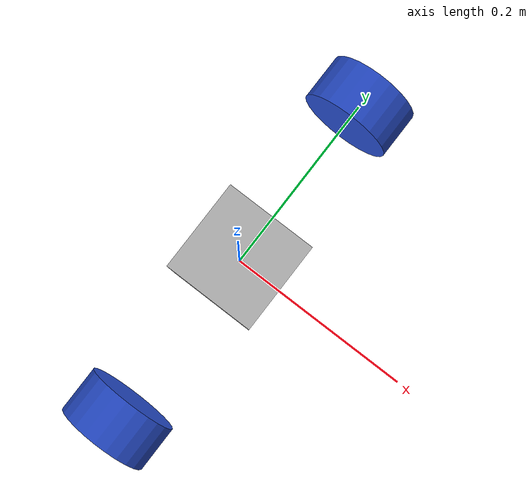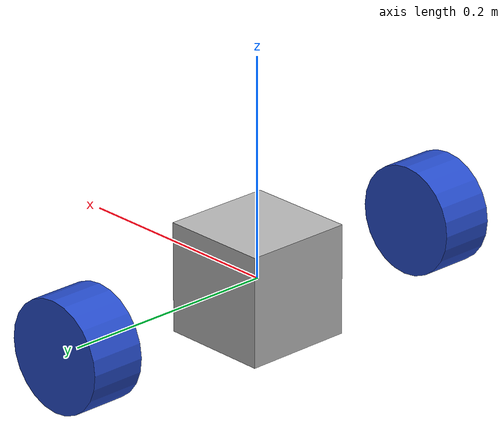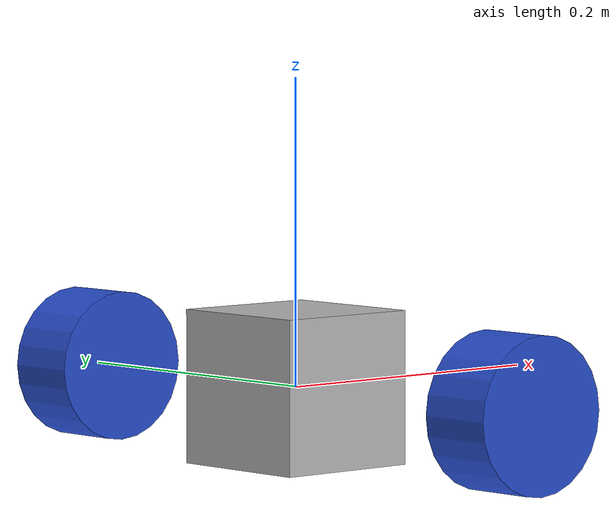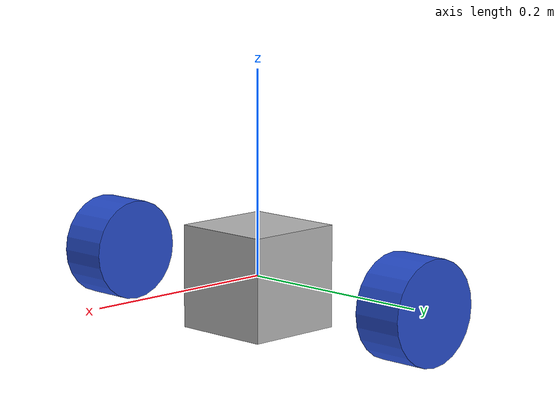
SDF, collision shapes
<sdf version='1.7'>
  <model name='bot'>
    	<link name='base_footprint' />

    	<joint name='base_link_joint' type='fixed'>
      		<parent>base_footprint</parent>
      		<child>base_link</child>
      	</joint>

    <joint name='lidar_joint' type='fixed'>
      		<pose>0.2 0 0.35 0 -0 0</pose>
      		<parent>base_link</parent>
      		<child>laserscan</child>
    	</joint>

    <link name='lasescan'>
    	<inertial>
    		<inertia>
          		<ixx>0.001</ixx>
          		<ixy>0.000</ixy>
          		<ixz>0.000</ixz>
          		<iyy>0.001</iyy>
          		<iyz>0.000</iyz>
          		<izz>0.001</izz>
        	</inertia>
        	<mass>0.114</mass>
      	</inertial>
      	<visual name='lidar_sensor_visual'>
        	<geometry>
          		<mesh>
            			<scale>1 1 1</scale>
            			<uri>model://waiter/meshes/hokuyo.dae</uri>
          		</mesh>
        	</geometry>
      	</visual>
        <collision name='base_scan_collision'>
        	<geometry>
          	<box>
            <size>0.1 0.1 0.1</size>
          </box>
        </geometry>
      </collision>
    </link>

    <joint name='left_wheel_hinge' type='revolute'>
      <pose relative_to='base_link'>0 0.2 0 0 -0 0</pose>
      <parent>base_link</parent>
      <child>left_wheel</child>
      <axis>
        <xyz>0 1 0</xyz>
        <limit>
          <lower>-1e+16</lower>
          <upper>1e+16</upper>
        </limit>
        <dynamics>
          <spring_reference>0</spring_reference>
          <spring_stiffness>0</spring_stiffness>
        </dynamics>
      </axis>
    </joint>

    <link name='left_wheel'>
      <pose relative_to='left_wheel_hinge'>0 0 0 0 -0 0</pose>
      <inertial>
        <pose>0 0 0 0 1.5707 1.5707</pose>
        <mass>1</mass>
        <inertia>
          <ixx>0.005</ixx>
          <ixy>0</ixy>
          <ixz>0</ixz>
          <iyy>0.0025</iyy>
          <iyz>0</iyz>
          <izz>0.0025</izz>
        </inertia>
      </inertial>
      <collision name='left_wheel_fixed_joint_lump__collision_collision'>
        <pose>0 0 0 -1.5707 1.5708 0</pose>
        <geometry>
          <cylinder>
            <length>0.05</length>
            <radius>0.05</radius>
          </cylinder>
        </geometry>
      </collision>
      <visual name='left_wheel_visual_visual'>
        <pose>0 0 0 -1.5707 1.5708 0</pose>
        <geometry>
          <cylinder>
            <length>0.05</length>
            <radius>0.05</radius>
          </cylinder>
        </geometry>
        <material>
          <script>
            <name>Gazebo/Blue</name>
            <uri>file://media/materials/scripts/gazebo.material</uri>
          </script>
        </material>
      </visual>
    </link>

    <joint name='right_wheel_hinge' type='revolute'>
      <pose relative_to='base_link'>0 -0.2 0 0 -0 0</pose>
      <parent>base_link</parent>
      <child>right_wheel</child>
      <axis>
        <xyz>0 1 0</xyz>
        <limit>
          <lower>-1e+16</lower>
          <upper>1e+16</upper>
        </limit>
        <dynamics>
          <spring_reference>0</spring_reference>
          <spring_stiffness>0</spring_stiffness>
        </dynamics>
      </axis>
    </joint>

    <link name='right_wheel'>
      <pose relative_to='right_wheel_hinge'>0 0 0 0 -0 0</pose>
      <inertial>
        <pose>0 0 0 0 1.5707 1.5707</pose>
        <mass>1</mass>
        <inertia>
          <ixx>0.005</ixx>
          <ixy>0</ixy>
          <ixz>0</ixz>
          <iyy>0.0025</iyy>
          <iyz>0</iyz>
          <izz>0.0025</izz>
        </inertia>
      </inertial>
      <collision name='right_wheel_fixed_joint_lump__collision_collision'>
        <pose>0 0 0 -1.5707 1.5708 0</pose>
        <geometry>
          <cylinder>
            <length>0.05</length>
            <radius>0.05</radius>
          </cylinder>
        </geometry>
      </collision>
      <visual name='right_wheel_visual_visual'>
        <pose>0 0 0 -1.5707 1.5708 0</pose>
        <geometry>
          <cylinder>
            <length>0.05</length>
            <radius>0.05</radius>
          </cylinder>
        </geometry>
        <material>
          <script>
            <name>Gazebo/Blue</name>
            <uri>file://media/materials/scripts/gazebo.material</uri>
          </script>
        </material>
      </visual>
    </link>

    <static>0</static>
    <plugin name='differential_drive_controller' filename='libgazebo_ros_diff_drive.so'>
      <updateRate>10</updateRate>
      <left_joint>left_wheel_hinge</left_joint>
      <right_joint>right_wheel_hinge</right_joint>
      <wheel_separation>0.4</wheel_separation>
      <wheel_diameter>0.1</wheel_diameter>
      <wheel_acceleration>1.0</wheel_acceleration>
      <wheel_torque>10</wheel_torque>
      <command_topic>cmd_vel</command_topic>
      <odometry_topic>/odom</odometry_topic>
      <odometry_frame>odom</odometry_frame>
      <robot_baseframe>chassis</robot_baseframe>
      <odometry_source>1</odometry_source>
      <ros>
        <remapping>/cmd_vel:=diff_drive/cmd_vel</remapping>
      </ros>
      <publish_odom>1</publish_odom>
      <publish_odom_tf>1</publish_odom_tf>
      <publish_wheel_tf>0</publish_wheel_tf>
    </plugin>

  </model>
</sdf>
